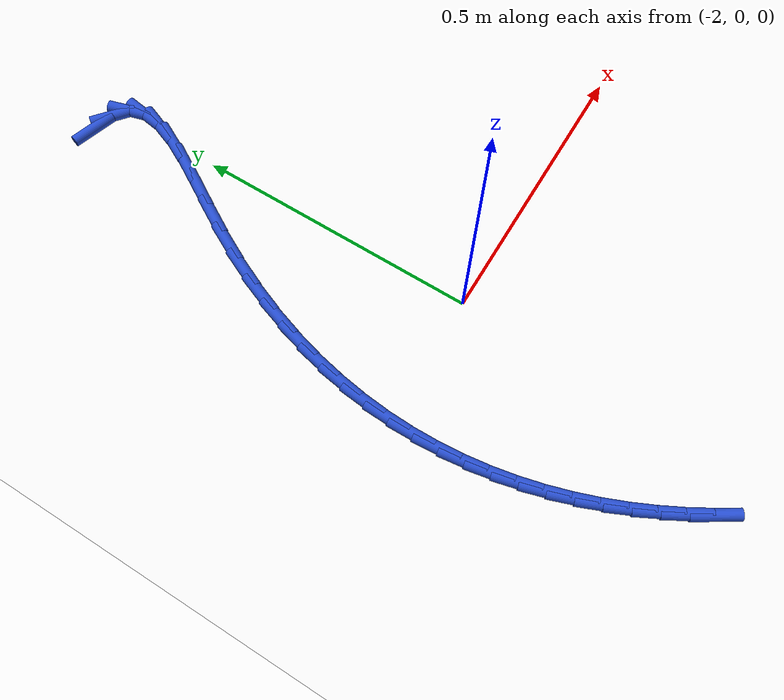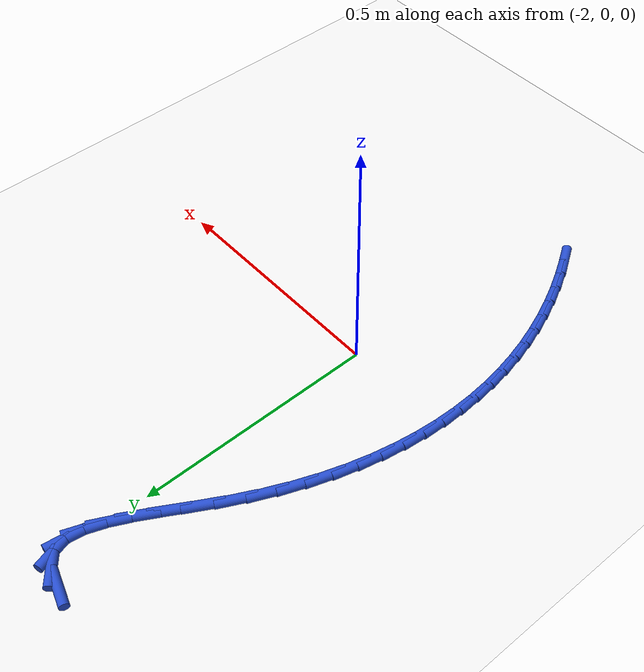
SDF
<sdf version="1.6">
 <world name="default">
  <model name="ground_plane">
   <static>1</static>
   <link name="link">
    <collision name="collision">
     <geometry><plane><normal>0 0 1</normal><size>100 100</size></plane></geometry>
     <surface><friction><ode><mu>100</mu><mu2>50</mu2></ode></friction></surface>
    </collision>
    <visual name="visual">
     <cast_shadows>0</cast_shadows>
     <geometry><plane><normal>0 0 1</normal><size>100 100</size></plane></geometry>
     <material>
      <script><uri>file://media/materials/scripts/gazebo.material</uri><name>Gazebo/WhiteGlow</name></script>
     </material>
    </visual>
   </link>
  </model>
  <model name="line">
   <link name="link_76">
    <pose>-2.05355069254351 0.7173141842002789 0.01 0 1.57 -0.3079555749455006</pose>
    <collision name="collision">
     <geometry><cylinder><radius>0.01</radius><length>0.08</length></cylinder></geometry>
    </collision>
    <visual name="visual">
     <material>
      <script><name>Gazebo/Blue</name><uri>file://media/materials/scripts/gazebo.material</uri></script>
     </material>
     <geometry><cylinder><radius>0.01</radius><length>0.08</length></cylinder></geometry>
    </visual>
   </link>
   <link name="link_77">
    <pose>-2.0145542973311987 0.7049104145945019 0.01 0 1.57 -0.6892405649406859</pose>
    <collision name="collision">
     <geometry><cylinder><radius>0.01</radius><length>0.08</length></cylinder></geometry>
    </collision>
    <visual name="visual">
     <material>
      <script><name>Gazebo/Blue</name><uri>file://media/materials/scripts/gazebo.material</uri></script>
     </material>
     <geometry><cylinder><radius>0.01</radius><length>0.08</length></cylinder></geometry>
    </visual>
   </link>
   <link name="link_78">
    <pose>-1.9905068617515516 0.6850938810317572 0.01 0 1.57 -1.2923007276627698</pose>
    <collision name="collision">
     <geometry><cylinder><radius>0.01</radius><length>0.08</length></cylinder></geometry>
    </collision>
    <visual name="visual">
     <material>
      <script><name>Gazebo/Blue</name><uri>file://media/materials/scripts/gazebo.material</uri></script>
     </material>
     <geometry><cylinder><radius>0.01</radius><length>0.08</length></cylinder></geometry>
    </visual>
   </link>
   <link name="link_79">
    <pose>-1.9824921081300804 0.6570630370536696 0.01 0 1.57 1.4229340122873917</pose>
    <collision name="collision">
     <geometry><cylinder><radius>0.01</radius><length>0.08</length></cylinder></geometry>
    </collision>
    <visual name="visual">
     <material>
      <script><name>Gazebo/Blue</name><uri>file://media/materials/scripts/gazebo.material</uri></script>
     </material>
     <geometry><cylinder><radius>0.01</radius><length>0.08</length></cylinder></geometry>
    </visual>
   </link>
   <link name="link_80">
    <pose>-1.987702514038312 0.6220819919946621 0.01 0 1.57 1.2042716075301174</pose>
    <collision name="collision">
     <geometry><cylinder><radius>0.01</radius><length>0.08</length></cylinder></geometry>
    </collision>
    <visual name="visual">
     <material>
      <script><name>Gazebo/Blue</name><uri>file://media/materials/scripts/gazebo.material</uri></script>
     </material>
     <geometry><cylinder><radius>0.01</radius><length>0.08</length></cylinder></geometry>
    </visual>
   </link>
   <link name="link_81">
    <pose>-2.00330904098906 0.5814262769254223 0.01 0 1.57 1.0957409574139356</pose>
    <collision name="collision">
     <geometry><cylinder><radius>0.01</radius><length>0.08</length></cylinder></geometry>
    </collision>
    <visual name="visual">
     <material>
      <script><name>Gazebo/Blue</name><uri>file://media/materials/scripts/gazebo.material</uri></script>
     </material>
     <geometry><cylinder><radius>0.01</radius><length>0.08</length></cylinder></geometry>
    </visual>
   </link>
   <link name="link_82">
    <pose>-2.026482650495135 0.536371422916637 0.01 0 1.57 1.0457074173123266</pose>
    <collision name="collision">
     <geometry><cylinder><radius>0.01</radius><length>0.08</length></cylinder></geometry>
    </collision>
    <visual name="visual">
     <material>
      <script><name>Gazebo/Blue</name><uri>file://media/materials/scripts/gazebo.material</uri></script>
     </material>
     <geometry><cylinder><radius>0.01</radius><length>0.08</length></cylinder></geometry>
    </visual>
   </link>
   <link name="link_83">
    <pose>-2.0543943040693513 0.48819296103899307 0.01 0 1.57 1.0332517761202222</pose>
    <collision name="collision">
     <geometry><cylinder><radius>0.01</radius><length>0.08</length></cylinder></geometry>
    </collision>
    <visual name="visual">
     <material>
      <script><name>Gazebo/Blue</name><uri>file://media/materials/scripts/gazebo.material</uri></script>
     </material>
     <geometry><cylinder><radius>0.01</radius><length>0.08</length></cylinder></geometry>
    </visual>
   </link>
   <link name="link_84">
    <pose>-2.0842149632245217 0.4381664223631789 0.01 0 1.57 1.0518403908442873</pose>
    <collision name="collision">
     <geometry><cylinder><radius>0.01</radius><length>0.08</length></cylinder></geometry>
    </collision>
    <visual name="visual">
     <material>
      <script><name>Gazebo/Blue</name><uri>file://media/materials/scripts/gazebo.material</uri></script>
     </material>
     <geometry><cylinder><radius>0.01</radius><length>0.08</length></cylinder></geometry>
    </visual>
   </link>
   <link name="link_85">
    <pose>-2.1131160839128973 0.38756712473802546 0.01 0 1.57 1.095843918147488</pose>
    <collision name="collision">
     <geometry><cylinder><radius>0.01</radius><length>0.08</length></cylinder></geometry>
    </collision>
    <visual name="visual">
     <material>
      <script><name>Gazebo/Blue</name><uri>file://media/materials/scripts/gazebo.material</uri></script>
     </material>
     <geometry><cylinder><radius>0.01</radius><length>0.08</length></cylinder></geometry>
    </visual>
   </link>
   <link name="link_86">
    <pose>-2.1389173193567936 0.33739085769550703 0.01 0 1.57 1.1457576734144785</pose>
    <collision name="collision">
     <geometry><cylinder><radius>0.01</radius><length>0.08</length></cylinder></geometry>
    </collision>
    <visual name="visual">
     <material>
      <script><name>Gazebo/Blue</name><uri>file://media/materials/scripts/gazebo.material</uri></script>
     </material>
     <geometry><cylinder><radius>0.01</radius><length>0.08</length></cylinder></geometry>
    </visual>
   </link>
   <link name="link_87">
    <pose>-2.161361844960275 0.2878039118746841 0.01 0 1.57 1.1974847540739646</pose>
    <collision name="collision">
     <geometry><cylinder><radius>0.01</radius><length>0.08</length></cylinder></geometry>
    </collision>
    <visual name="visual">
     <material>
      <script><name>Gazebo/Blue</name><uri>file://media/materials/scripts/gazebo.material</uri></script>
     </material>
     <geometry><cylinder><radius>0.01</radius><length>0.08</length></cylinder></geometry>
    </visual>
   </link>
   <link name="link_88">
    <pose>-2.180547982827555 0.23881942460170447 0.01 0 1.57 1.2508497159432177</pose>
    <collision name="collision">
     <geometry><cylinder><radius>0.01</radius><length>0.08</length></cylinder></geometry>
    </collision>
    <visual name="visual">
     <material>
      <script><name>Gazebo/Blue</name><uri>file://media/materials/scripts/gazebo.material</uri></script>
     </material>
     <geometry><cylinder><radius>0.01</radius><length>0.08</length></cylinder></geometry>
    </visual>
   </link>
   <link name="link_89">
    <pose>-2.196574055062846 0.1904505332027178 0.01 0 1.57 1.305630839417704</pose>
    <collision name="collision">
     <geometry><cylinder><radius>0.01</radius><length>0.08</length></cylinder></geometry>
    </collision>
    <visual name="visual">
     <material>
      <script><name>Gazebo/Blue</name><uri>file://media/materials/scripts/gazebo.material</uri></script>
     </material>
     <geometry><cylinder><radius>0.01</radius><length>0.08</length></cylinder></geometry>
    </visual>
   </link>
   <link name="link_90">
    <pose>-2.209538383770363 0.1427103750038723 0.01 0 1.57 1.3615628704036737</pose>
    <collision name="collision">
     <geometry><cylinder><radius>0.01</radius><length>0.08</length></cylinder></geometry>
    </collision>
    <visual name="visual">
     <material>
      <script><name>Gazebo/Blue</name><uri>file://media/materials/scripts/gazebo.material</uri></script>
     </material>
     <geometry><cylinder><radius>0.01</radius><length>0.08</length></cylinder></geometry>
    </visual>
   </link>
   <link name="link_91">
    <pose>-2.2195392910543177 0.09561208733131615 0.01 0 1.57 1.4183428711980957</pose>
    <collision name="collision">
     <geometry><cylinder><radius>0.01</radius><length>0.08</length></cylinder></geometry>
    </collision>
    <visual name="visual">
     <material>
      <script><name>Gazebo/Blue</name><uri>file://media/materials/scripts/gazebo.material</uri></script>
     </material>
     <geometry><cylinder><radius>0.01</radius><length>0.08</length></cylinder></geometry>
    </visual>
   </link>
   <link name="link_92">
    <pose>-2.226675099018925 0.049168807511197114 0.01 0 1.57 1.4756390810838418</pose>
    <collision name="collision">
     <geometry><cylinder><radius>0.01</radius><length>0.08</length></cylinder></geometry>
    </collision>
    <visual name="visual">
     <material>
      <script><name>Gazebo/Blue</name><uri>file://media/materials/scripts/gazebo.material</uri></script>
     </material>
     <geometry><cylinder><radius>0.01</radius><length>0.08</length></cylinder></geometry>
    </visual>
   </link>
   <link name="link_93">
    <pose>-2.2310441297683976 0.0033936728696656784 0.01 0 1.57 1.5331022717209655</pose>
    <collision name="collision">
     <geometry><cylinder><radius>0.01</radius><length>0.08</length></cylinder></geometry>
    </collision>
    <visual name="visual">
     <material>
      <script><name>Gazebo/Blue</name><uri>file://media/materials/scripts/gazebo.material</uri></script>
     </material>
     <geometry><cylinder><radius>0.01</radius><length>0.08</length></cylinder></geometry>
    </visual>
   </link>
   <link name="link_94">
    <pose>-2.2327447054069496 -0.041700179267130696 0.01 0 1.57 -1.5512139544392582</pose>
    <collision name="collision">
     <geometry><cylinder><radius>0.01</radius><length>0.08</length></cylinder></geometry>
    </collision>
    <visual name="visual">
     <material>
      <script><name>Gazebo/Blue</name><uri>file://media/materials/scripts/gazebo.material</uri></script>
     </material>
     <geometry><cylinder><radius>0.01</radius><length>0.08</length></cylinder></geometry>
    </visual>
   </link>
   <link name="link_95">
    <pose>-2.231875148038794 -0.08609961157304351 0.01 0 1.57 -1.4944691610929128</pose>
    <collision name="collision">
     <geometry><cylinder><radius>0.01</radius><length>0.08</length></cylinder></geometry>
    </collision>
    <visual name="visual">
     <material>
      <script><name>Gazebo/Blue</name><uri>file://media/materials/scripts/gazebo.material</uri></script>
     </material>
     <geometry><cylinder><radius>0.01</radius><length>0.08</length></cylinder></geometry>
    </visual>
   </link>
   <link name="link_96">
    <pose>-2.228533779768145 -0.12979148672192414 0.01 0 1.57 -1.4385794075335714</pose>
    <collision name="collision">
     <geometry><cylinder><radius>0.01</radius><length>0.08</length></cylinder></geometry>
    </collision>
    <visual name="visual">
     <material>
      <script><name>Gazebo/Blue</name><uri>file://media/materials/scripts/gazebo.material</uri></script>
     </material>
     <geometry><cylinder><radius>0.01</radius><length>0.08</length></cylinder></geometry>
    </visual>
   </link>
   <link name="link_97">
    <pose>-2.2228189226992154 -0.1727626673876241 0.01 0 1.57 -1.3838359377901324</pose>
    <collision name="collision">
     <geometry><cylinder><radius>0.01</radius><length>0.08</length></cylinder></geometry>
    </collision>
    <visual name="visual">
     <material>
      <script><name>Gazebo/Blue</name><uri>file://media/materials/scripts/gazebo.material</uri></script>
     </material>
     <geometry><cylinder><radius>0.01</radius><length>0.08</length></cylinder></geometry>
    </visual>
   </link>
   <link name="link_98">
    <pose>-2.214828898936218 -0.21500001624399573 0.01 0 1.57 -1.3304898254622188</pose>
    <collision name="collision">
     <geometry><cylinder><radius>0.01</radius><length>0.08</length></cylinder></geometry>
    </collision>
    <visual name="visual">
     <material>
      <script><name>Gazebo/Blue</name><uri>file://media/materials/scripts/gazebo.material</uri></script>
     </material>
     <geometry><cylinder><radius>0.01</radius><length>0.08</length></cylinder></geometry>
    </visual>
   </link>
   <link name="link_99">
    <pose>-2.204662030583368 -0.2564903959648889 0.01 0 1.57 -1.2787470423948881</pose>
    <collision name="collision">
     <geometry><cylinder><radius>0.01</radius><length>0.08</length></cylinder></geometry>
    </collision>
    <visual name="visual">
     <material>
      <script><name>Gazebo/Blue</name><uri>file://media/materials/scripts/gazebo.material</uri></script>
     </material>
     <geometry><cylinder><radius>0.01</radius><length>0.08</length></cylinder></geometry>
    </visual>
   </link>
   <link name="link_100">
    <pose>-2.192416639744878 -0.29722066922415563 0.01 0 1.57 -1.2287665875737148</pose>
    <collision name="collision">
     <geometry><cylinder><radius>0.01</radius><length>0.08</length></cylinder></geometry>
    </collision>
    <visual name="visual">
     <material>
      <script><name>Gazebo/Blue</name><uri>file://media/materials/scripts/gazebo.material</uri></script>
     </material>
     <geometry><cylinder><radius>0.01</radius><length>0.08</length></cylinder></geometry>
    </visual>
   </link>
   <link name="link_101">
    <pose>-2.178191048524962 -0.33717769869564773 0.01 0 1.57 -1.1806613250450704</pose>
    <collision name="collision">
     <geometry><cylinder><radius>0.01</radius><length>0.08</length></cylinder></geometry>
    </collision>
    <visual name="visual">
     <material>
      <script><name>Gazebo/Blue</name><uri>file://media/materials/scripts/gazebo.material</uri></script>
     </material>
     <geometry><cylinder><radius>0.01</radius><length>0.08</length></cylinder></geometry>
    </visual>
   </link>
   <link name="link_102">
    <pose>-2.1620835790278323 -0.3763483470532165 0.01 0 1.57 -1.1345009634884988</pose>
    <collision name="collision">
     <geometry><cylinder><radius>0.01</radius><length>0.08</length></cylinder></geometry>
    </collision>
    <visual name="visual">
     <material>
      <script><name>Gazebo/Blue</name><uri>file://media/materials/scripts/gazebo.material</uri></script>
     </material>
     <geometry><cylinder><radius>0.01</radius><length>0.08</length></cylinder></geometry>
    </visual>
   </link>
   <link name="link_103">
    <pose>-2.144192553357703 -0.4147194769707142 0.01 0 1.57 -1.090316520284805</pose>
    <collision name="collision">
     <geometry><cylinder><radius>0.01</radius><length>0.08</length></cylinder></geometry>
    </collision>
    <visual name="visual">
     <material>
      <script><name>Gazebo/Blue</name><uri>file://media/materials/scripts/gazebo.material</uri></script>
     </material>
     <geometry><cylinder><radius>0.01</radius><length>0.08</length></cylinder></geometry>
    </visual>
   </link>
   <link name="link_104">
    <pose>-2.1246162936187885 -0.4522779511219909 0.01 0 1.57 -1.0481056298915392</pose>
    <collision name="collision">
     <geometry><cylinder><radius>0.01</radius><length>0.08</length></cylinder></geometry>
    </collision>
    <visual name="visual">
     <material>
      <script><name>Gazebo/Blue</name><uri>file://media/materials/scripts/gazebo.material</uri></script>
     </material>
     <geometry><cylinder><radius>0.01</radius><length>0.08</length></cylinder></geometry>
    </visual>
   </link>
   <link name="link_105">
    <pose>-2.1034531219153014 -0.48901063218089874 0.01 0 1.57 -1.0078381457152563</pose>
    <collision name="collision">
     <geometry><cylinder><radius>0.01</radius><length>0.08</length></cylinder></geometry>
    </collision>
    <visual name="visual">
     <material>
      <script><name>Gazebo/Blue</name><uri>file://media/materials/scripts/gazebo.material</uri></script>
     </material>
     <geometry><cylinder><radius>0.01</radius><length>0.08</length></cylinder></geometry>
    </visual>
   </link>
  </model>
 </world>
</sdf>
